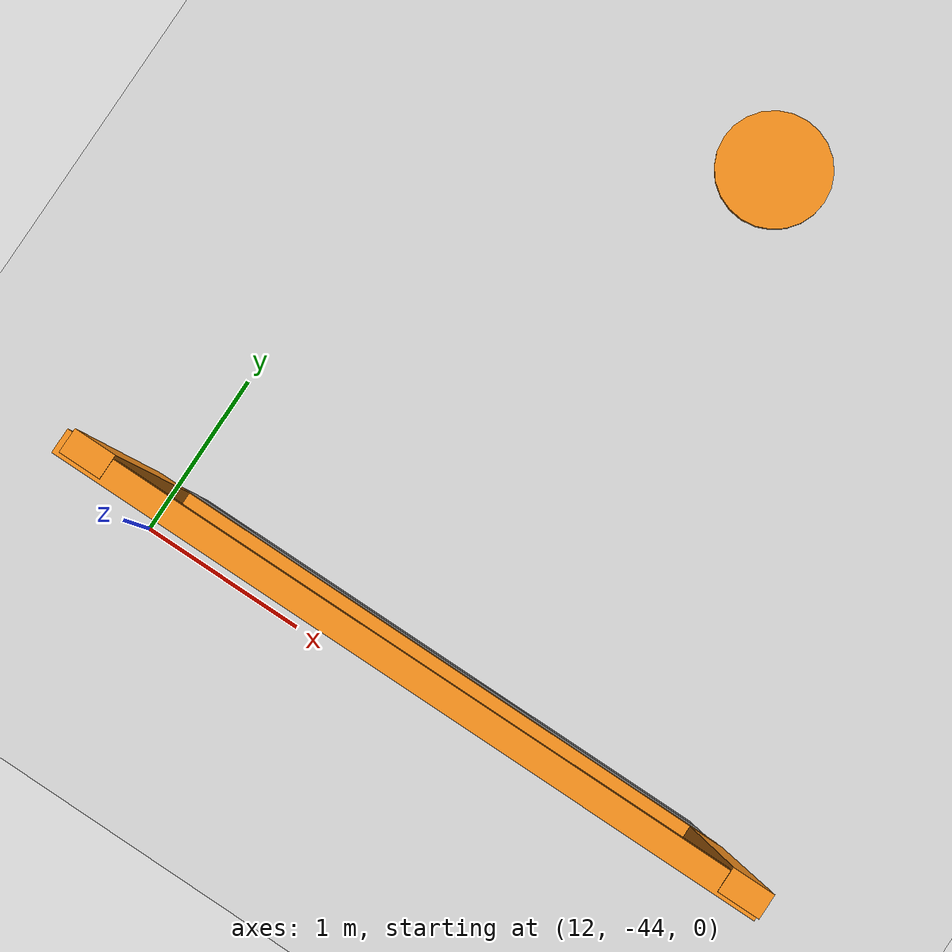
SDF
<sdf version="1.7">
 <world name="default">
  <model name="ground_plane">
   <static>1</static>
   <link name="link">
    <collision name="collision">
     <geometry><plane><normal>0 0 1</normal><size>5000 5000</size></plane></geometry>
     <surface><friction><ode><mu>100</mu><mu2>50</mu2></ode></friction></surface>
    </collision>
    <visual name="runway">
     <pose>0 0 0.005 0 -0 0</pose>
     <cast_shadows>0</cast_shadows>
     <geometry><plane><normal>0 0 1</normal><size>1829 45</size></plane></geometry>
     <material>
      <script><uri>file://media/materials/scripts/gazebo.material</uri><name>Gazebo/Runway</name></script>
     </material>
    </visual>
    <visual name="grass">
     <pose>0 0 -0.1 0 -0 0</pose>
     <cast_shadows>0</cast_shadows>
     <geometry><plane><normal>0 0 1</normal><size>5000 5000</size></plane></geometry>
     <material>
      <script><uri>file://media/materials/scripts/gazebo.material</uri><name>Gazebo/Grass</name></script>
     </material>
    </visual>
   </link>
  </model>
  <model name="Keranjang_silinder_clone">
   <link name="link">
    <inertial>
     <mass>1</mass>
     <inertia><ixx>0.145833</ixx><ixy>0</ixy><ixz>0</ixz><iyy>0.145833</iyy><iyz>0</iyz><izz>0.125</izz></inertia>
    </inertial>
    <visual name="visual">
     <geometry><cylinder><radius>0.341873</radius><length>0.0273499</length></cylinder></geometry>
     <material>
      <script><name>Gazebo/Orange</name><uri>file://media/materials/scripts/gazebo.material</uri></script>
      <shader type="pixel"><normal_map>__default__</normal_map></shader>
      <ambient>1 0.509 0.047 1</ambient>
      <diffuse>1 0.509 0.047 1</diffuse>
      <specular>0.5 0.5 0.5 1</specular>
      <emissive>0 0 0 1</emissive>
     </material>
    </visual>
    <collision name="collision">
     <geometry><cylinder><radius>0.341873</radius><length>0.0273499</length></cylinder></geometry>
     <surface>
      <friction>
       <ode><mu>1</mu><mu2>1</mu2><fdir1>0 0 0</fdir1><slip1>0</slip1><slip2>0</slip2></ode>
       <torsional>
        <coefficient>1</coefficient>
        <patch_radius>0</patch_radius>
        <surface_radius>0</surface_radius>
        <use_patch_radius>1</use_patch_radius>
        <ode><slip>0</slip></ode>
       </torsional>
      </friction>
      <bounce><restitution_coefficient>0</restitution_coefficient><threshold>1e+06</threshold></bounce>
      <contact>
       <collide_without_contact>0</collide_without_contact>
       <collide_without_contact_bitmask>1</collide_without_contact_bitmask>
       <collide_bitmask>1</collide_bitmask>
       <ode>
        <soft_cfm>0</soft_cfm>
        <soft_erp>0.2</soft_erp>
        <kp>1e+13</kp>
        <kd>1</kd>
        <max_vel>0.01</max_vel>
        <min_depth>0</min_depth>
       </ode>
       <bullet>
        <split_impulse>1</split_impulse>
        <split_impulse_penetration_threshold>-0.01</split_impulse_penetration_threshold>
        <soft_cfm>0</soft_cfm>
        <soft_erp>0.2</soft_erp>
        <kp>1e+13</kp>
        <kd>1</kd>
       </bullet>
      </contact>
     </surface>
    </collision>
   </link>
   <static>0</static>
   <pose>13.818 -40.3411 0.013675 0 -0 0</pose>
  </model>
  <model name="Gate_Neroko">
   <static>1</static>
   <link name="link">
    <inertial>
     <mass>0.797683</mass>
     <inertia><ixx>0.281153</ixx><ixy>0</ixy><ixz>0</ixz><iyy>1.0335</iyy><iyz>0</iyz><izz>0.754116</izz></inertia>
    </inertial>
    <pose>-0.282054 -0.294487 -0 0 -0 0</pose>
    <visual name="visual">
     <geometry><box><size>3.3662 0.115392 2.05335</size></box></geometry>
     <material>
      <script><name>Gazebo/Grey</name><uri>file://media/materials/scripts/gazebo.material</uri></script>
      <shader type="pixel"/>
     </material>
    </visual>
    <collision name="collision">
     <geometry><box><size>3.3662 0.115392 2.05335</size></box></geometry>
     <surface>
      <friction>
       <ode><mu>1</mu><mu2>1</mu2><fdir1>0 0 0</fdir1><slip1>0</slip1><slip2>0</slip2></ode>
       <torsional>
        <coefficient>1</coefficient>
        <patch_radius>0</patch_radius>
        <surface_radius>0</surface_radius>
        <use_patch_radius>1</use_patch_radius>
        <ode><slip>0</slip></ode>
       </torsional>
      </friction>
      <bounce><restitution_coefficient>0</restitution_coefficient><threshold>1e+06</threshold></bounce>
      <contact>
       <collide_without_contact>0</collide_without_contact>
       <collide_without_contact_bitmask>1</collide_without_contact_bitmask>
       <collide_bitmask>1</collide_bitmask>
       <ode>
        <soft_cfm>0</soft_cfm>
        <soft_erp>0.2</soft_erp>
        <kp>1e+13</kp>
        <kd>1</kd>
        <max_vel>0.01</max_vel>
        <min_depth>0</min_depth>
       </ode>
       <bullet>
        <split_impulse>1</split_impulse>
        <split_impulse_penetration_threshold>-0.01</split_impulse_penetration_threshold>
        <soft_cfm>0</soft_cfm>
        <soft_erp>0.2</soft_erp>
        <kp>1e+13</kp>
        <kd>1</kd>
       </bullet>
      </contact>
     </surface>
    </collision>
   </link>
   <link name="link_clone">
    <inertial>
     <mass>0.0761951</mass>
     <inertia>
      <ixx>0.00032881</ixx>
      <ixy>0</ixy>
      <ixz>0</ixz>
      <iyy>0.0721934</iyy>
      <iyz>0</iyz>
      <izz>0.0720337</izz>
     </inertia>
    </inertial>
    <pose>-0.296367 -0.28355 1.10391 0 -0 0</pose>
    <visual name="visual">
     <geometry><box><size>3.3662 0.115392 0.196135</size></box></geometry>
     <material>
      <script><name>Gazebo/Orange</name><uri>file://media/materials/scripts/gazebo.material</uri></script>
      <shader type="pixel"><normal_map>__default__</normal_map></shader>
      <ambient>1 0.509 0.047 1</ambient>
      <diffuse>1 0.509 0.047 1</diffuse>
      <specular>0.5 0.5 0.5 1</specular>
      <emissive>0 0 0 1</emissive>
     </material>
    </visual>
    <collision name="collision">
     <geometry><box><size>3.3662 0.115392 0.196135</size></box></geometry>
     <surface>
      <friction>
       <ode><mu>1</mu><mu2>1</mu2><fdir1>0 0 0</fdir1><slip1>0</slip1><slip2>0</slip2></ode>
       <torsional>
        <coefficient>1</coefficient>
        <patch_radius>0</patch_radius>
        <surface_radius>0</surface_radius>
        <use_patch_radius>1</use_patch_radius>
        <ode><slip>0</slip></ode>
       </torsional>
      </friction>
      <bounce><restitution_coefficient>0</restitution_coefficient><threshold>1e+06</threshold></bounce>
      <contact>
       <collide_without_contact>0</collide_without_contact>
       <collide_without_contact_bitmask>1</collide_without_contact_bitmask>
       <collide_bitmask>1</collide_bitmask>
       <ode>
        <soft_cfm>0</soft_cfm>
        <soft_erp>0.2</soft_erp>
        <kp>1e+13</kp>
        <kd>1</kd>
        <max_vel>0.01</max_vel>
        <min_depth>0</min_depth>
       </ode>
       <bullet>
        <split_impulse>1</split_impulse>
        <split_impulse_penetration_threshold>-0.01</split_impulse_penetration_threshold>
        <soft_cfm>0</soft_cfm>
        <soft_erp>0.2</soft_erp>
        <kp>1e+13</kp>
        <kd>1</kd>
       </bullet>
      </contact>
     </surface>
    </collision>
   </link>
   <link name="link_clone_clone">
    <inertial>
     <mass>0.0761951</mass>
     <inertia>
      <ixx>0.00032881</ixx>
      <ixy>0</ixy>
      <ixz>0</ixz>
      <iyy>0.0721934</iyy>
      <iyz>0</iyz>
      <izz>0.0720337</izz>
     </inertia>
    </inertial>
    <pose>-0.29864 -0.300783 3.67137 0 -0 0</pose>
    <visual name="visual">
     <geometry><box><size>3.3662 0.115392 0.196135</size></box></geometry>
     <material>
      <script><name>Gazebo/Orange</name><uri>file://media/materials/scripts/gazebo.material</uri></script>
      <shader type="pixel"><normal_map>__default__</normal_map></shader>
      <ambient>1 0.509 0.047 1</ambient>
      <diffuse>1 0.509 0.047 1</diffuse>
      <specular>0.5 0.5 0.5 1</specular>
      <emissive>0 0 0 1</emissive>
     </material>
    </visual>
    <collision name="collision">
     <geometry><box><size>3.3662 0.115392 0.196135</size></box></geometry>
     <surface>
      <friction>
       <ode><mu>1</mu><mu2>1</mu2><fdir1>0 0 0</fdir1><slip1>0</slip1><slip2>0</slip2></ode>
       <torsional>
        <coefficient>1</coefficient>
        <patch_radius>0</patch_radius>
        <surface_radius>0</surface_radius>
        <use_patch_radius>1</use_patch_radius>
        <ode><slip>0</slip></ode>
       </torsional>
      </friction>
      <bounce><restitution_coefficient>0</restitution_coefficient><threshold>1e+06</threshold></bounce>
      <contact>
       <collide_without_contact>0</collide_without_contact>
       <collide_without_contact_bitmask>1</collide_without_contact_bitmask>
       <collide_bitmask>1</collide_bitmask>
       <ode>
        <soft_cfm>0</soft_cfm>
        <soft_erp>0.2</soft_erp>
        <kp>1e+13</kp>
        <kd>1</kd>
        <max_vel>0.01</max_vel>
        <min_depth>0</min_depth>
       </ode>
       <bullet>
        <split_impulse>1</split_impulse>
        <split_impulse_penetration_threshold>-0.01</split_impulse_penetration_threshold>
        <soft_cfm>0</soft_cfm>
        <soft_erp>0.2</soft_erp>
        <kp>1e+13</kp>
        <kd>1</kd>
       </bullet>
      </contact>
     </surface>
    </collision>
   </link>
   <link name="link_clone_clone_clone">
    <inertial>
     <mass>0.0623358</mass>
     <inertia>
      <ixx>0.000269001</ixx>
      <ixy>0</ixy>
      <ixz>0</ixz>
      <iyy>0.0395963</iyy>
      <iyz>0</iyz>
      <izz>0.0394656</izz>
     </inertia>
    </inertial>
    <pose>-1.86703 -0.28292 2.4016 0 -1.56422 0</pose>
    <visual name="visual">
     <geometry><box><size>2.75391 0.115392 0.196135</size></box></geometry>
     <material>
      <script><name>Gazebo/Orange</name><uri>file://media/materials/scripts/gazebo.material</uri></script>
      <shader type="pixel"><normal_map>__default__</normal_map></shader>
      <ambient>1 0.509 0.047 1</ambient>
      <diffuse>1 0.509 0.047 1</diffuse>
      <specular>0.5 0.5 0.5 1</specular>
      <emissive>0 0 0 1</emissive>
     </material>
    </visual>
    <collision name="collision">
     <geometry><box><size>2.75391 0.115392 0.196135</size></box></geometry>
     <surface>
      <friction>
       <ode><mu>1</mu><mu2>1</mu2><fdir1>0 0 0</fdir1><slip1>0</slip1><slip2>0</slip2></ode>
       <torsional>
        <coefficient>1</coefficient>
        <patch_radius>0</patch_radius>
        <surface_radius>0</surface_radius>
        <use_patch_radius>1</use_patch_radius>
        <ode><slip>0</slip></ode>
       </torsional>
      </friction>
      <bounce><restitution_coefficient>0</restitution_coefficient><threshold>1e+06</threshold></bounce>
      <contact>
       <collide_without_contact>0</collide_without_contact>
       <collide_without_contact_bitmask>1</collide_without_contact_bitmask>
       <collide_bitmask>1</collide_bitmask>
       <ode>
        <soft_cfm>0</soft_cfm>
        <soft_erp>0.2</soft_erp>
        <kp>1e+13</kp>
        <kd>1</kd>
        <max_vel>0.01</max_vel>
        <min_depth>0</min_depth>
       </ode>
       <bullet>
        <split_impulse>1</split_impulse>
        <split_impulse_penetration_threshold>-0.01</split_impulse_penetration_threshold>
        <soft_cfm>0</soft_cfm>
        <soft_erp>0.2</soft_erp>
        <kp>1e+13</kp>
        <kd>1</kd>
       </bullet>
      </contact>
     </surface>
    </collision>
   </link>
   <link name="link_clone_clone_clone_0">
    <inertial>
     <mass>0.0603209</mass>
     <inertia>
      <ixx>0.000260306</ixx>
      <ixy>0</ixy>
      <ixz>0</ixz>
      <iyy>0.0358917</iyy>
      <iyz>0</iyz>
      <izz>0.0357653</izz>
     </inertia>
    </inertial>
    <pose>1.30358 -0.283963 2.45052 0 1.5659 0</pose>
    <visual name="visual">
     <geometry><box><size>2.6649 0.115392 0.196135</size></box></geometry>
     <material>
      <script><name>Gazebo/Orange</name><uri>file://media/materials/scripts/gazebo.material</uri></script>
      <shader type="pixel"><normal_map>__default__</normal_map></shader>
      <ambient>1 0.509 0.047 1</ambient>
      <diffuse>1 0.509 0.047 1</diffuse>
      <specular>0.5 0.5 0.5 1</specular>
      <emissive>0 0 0 1</emissive>
     </material>
    </visual>
    <collision name="collision">
     <geometry><box><size>2.6649 0.115392 0.196135</size></box></geometry>
     <surface>
      <friction>
       <ode><mu>1</mu><mu2>1</mu2><fdir1>0 0 0</fdir1><slip1>0</slip1><slip2>0</slip2></ode>
       <torsional>
        <coefficient>1</coefficient>
        <patch_radius>0</patch_radius>
        <surface_radius>0</surface_radius>
        <use_patch_radius>1</use_patch_radius>
        <ode><slip>0</slip></ode>
       </torsional>
      </friction>
      <bounce><restitution_coefficient>0</restitution_coefficient><threshold>1e+06</threshold></bounce>
      <contact>
       <collide_without_contact>0</collide_without_contact>
       <collide_without_contact_bitmask>1</collide_without_contact_bitmask>
       <collide_bitmask>1</collide_bitmask>
       <ode>
        <soft_cfm>0</soft_cfm>
        <soft_erp>0.2</soft_erp>
        <kp>1e+13</kp>
        <kd>1</kd>
        <max_vel>0.01</max_vel>
        <min_depth>0</min_depth>
       </ode>
       <bullet>
        <split_impulse>1</split_impulse>
        <split_impulse_penetration_threshold>-0.01</split_impulse_penetration_threshold>
        <soft_cfm>0</soft_cfm>
        <soft_erp>0.2</soft_erp>
        <kp>1e+13</kp>
        <kd>1</kd>
       </bullet>
      </contact>
     </surface>
    </collision>
   </link>
   <static>0</static>
   <pose>14.0818 -43.4536 0.5 0 -0 0</pose>
  </model>
 </world>
</sdf>
